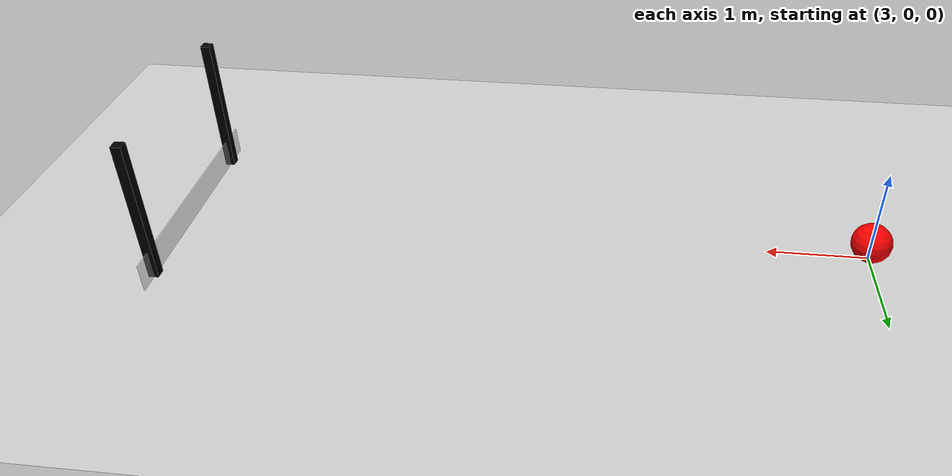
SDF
<?xml version="1.0" ?>

<sdf version="1.6">
  <world name="ball_world">

    <!-- Physics settings - controls simulation accuracy and speed -->
    <physics name="default_physics" default="true" type="ode">
      <max_step_size>0.001</max_step_size>
      <real_time_factor>1.0</real_time_factor>
      <real_time_update_rate>1000</real_time_update_rate>
    </physics>

    <!-- Gravity -->
    <gravity>0 0 -9.8</gravity>

    <!-- Lighting -->
    <light name="sun" type="directional">
      <cast_shadows>true</cast_shadows>
      <pose>0 0 10 0 0 0</pose>
      <diffuse>0.8 0.8 0.8 1</diffuse>
      <specular>0.2 0.2 0.2 1</specular>
      <attenuation>
        <range>1000</range>
        <constant>0.9</constant>
        <linear>0.01</linear>
        <quadratic>0.001</quadratic>
      </attenuation>
      <direction>-0.5 0.1 -0.9</direction>
    </light>

    <!-- Ground plane -->
    <model name="ground_plane">
      <static>true</static>
      <link name="link">
        <collision name="collision">
          <geometry>
            <plane>
              <normal>0 0 1</normal>
              <size>100 100</size>
            </plane>
          </geometry>
          <surface>
            <friction>
              <ode>
                <mu>100</mu>
                <mu2>50</mu2>
              </ode>
            </friction>
          </surface>
        </collision>
        <visual name="visual">
          <geometry>
            <plane>
              <normal>0 0 1</normal>
              <size>100 100</size>
            </plane>
          </geometry>
          <material>
            <ambient>0.8 0.8 0.8 1</ambient>
            <diffuse>0.8 0.8 0.8 1</diffuse>
            <specular>0.1 0.1 0.1 1</specular>
          </material>
        </visual>
      </link>
    </model>

    <model name="red_ball">
      <pose>3 0 0.2 0 0 0</pose>
      <link name="link">
        <inertial>
          <!-- Ball mass - increase to make it harder to push -->
          <mass>0.5</mass>
          <inertia>
            <ixx>0.004</ixx>
            <ixy>0</ixy>
            <ixz>0</ixz>
            <iyy>0.004</iyy>
            <iyz>0</iyz>
            <izz>0.004</izz>
          </inertia>
        </inertial>

        <collision name="collision">
          <geometry>
            <sphere>
              <!-- Ball size - change radius here -->
              <radius>0.2</radius>
            </sphere>
          </geometry>
          <surface>
            <friction>
              <ode>
                <!-- Friction coefficients - higher = less sliding -->
                <mu>1.0</mu>
                <mu2>1.0</mu2>
              </ode>
            </friction>
            <contact>
              <ode>
                <!-- Contact stiffness (higher = harder) -->
                <kp>1000000.0</kp>
                <!-- Contact damping (higher = less bouncy) -->
                <kd>100.0</kd>
                <max_vel>0.01</max_vel>

              </ode>
            </contact>
          </surface>
        </collision>

        <visual name="visual">
          <geometry>
            <sphere>
              <!-- Must match collision radius -->
              <radius>0.2</radius>
            </sphere>
          </geometry>
          <material>
            <ambient>1 0 0 1</ambient>
            <diffuse>1 0 0 1</diffuse>
            <specular>0.5 0.5 0.5 1</specular>
            <emissive>0.2 0 0 1</emissive>
          </material>
        </visual>
      </link>
    </model>

    <!-- Goal posts and goal area -->
    <model name="goal">
      <static>true</static>
      <pose>10 0 0 0 0 0</pose>
      <link name="left_post">
        <pose>0 1 0.75 0 0 0</pose>
        <visual name="visual">
          <geometry>
            <box>
              <size>0.1 0.1 1.5</size>
            </box>
          </geometry>
          <material>
            <ambient>0 0 0 1</ambient>
            <diffuse>0 0 0 1</diffuse>
          </material>
        </visual>
      </link>
      <link name="right_post">
        <pose>0 -1 0.75 0 0 0</pose>
        <visual name="visual">
          <geometry>
            <box>
              <size>0.1 0.1 1.5</size>
            </box>
          </geometry>
          <material>
            <ambient>0 0 0 1</ambient>
            <diffuse>0 0 0 1</diffuse>
          </material>
        </visual>
      </link>
      <!-- Back of the goal as a visible plane for reference -->
      <link name="back_plane">
        <pose>0 0 0.15 0 0 0</pose>
        <visual name="visual">
          <geometry>
            <box>
              <size>0.01 2.5 0.3</size>
            </box>
          </geometry>
          <material>
            <ambient>0.8 0.8 0.8 0.5</ambient>
            <diffuse>0.8 0.8 0.8 0.5</diffuse>
          </material>
        </visual>
      </link>
    </model>

    <!-- Robot is spawned at runtime by the ROS launch (ros_gz_sim create) -->

  </world>
</sdf>
